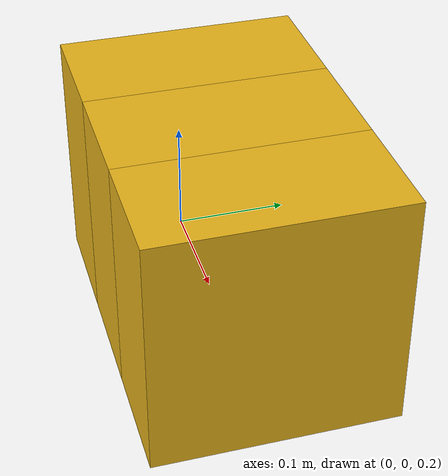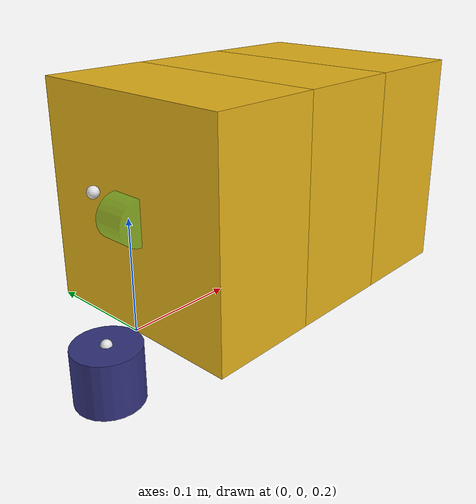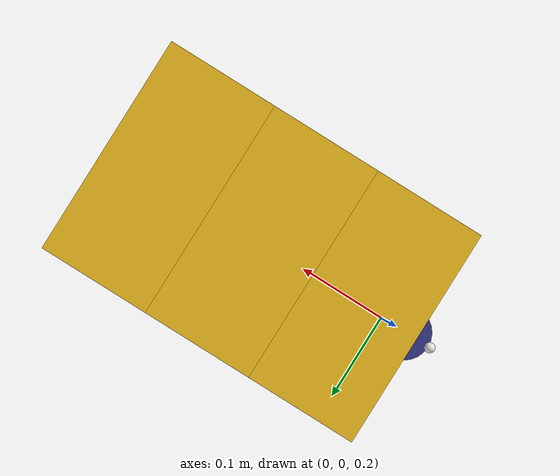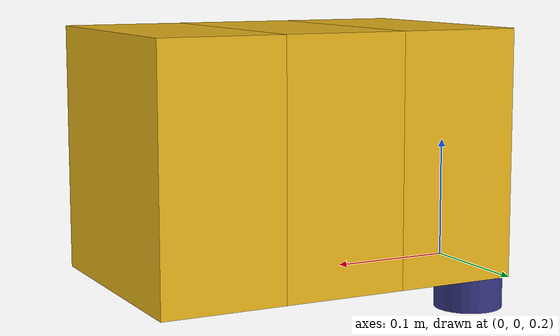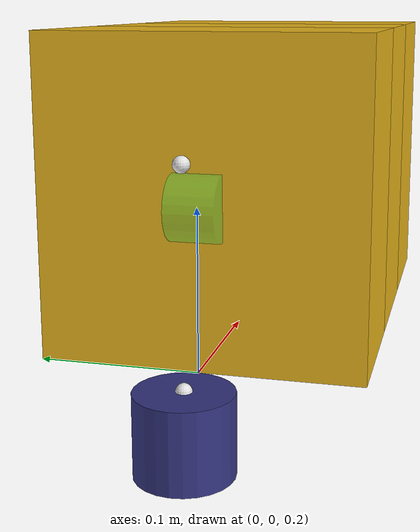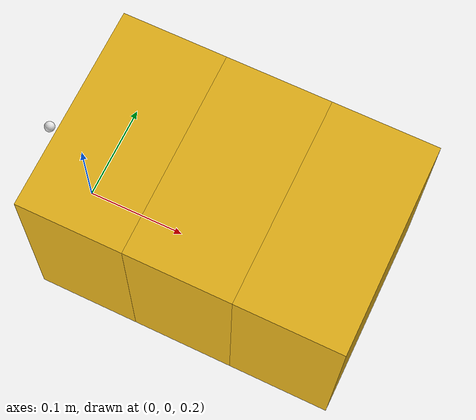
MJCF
<mujoco model="robotic_arm">
    <option gravity="0 0 -9.81" />
    <visual>
        <headlight ambient="0.5 0.5 0.5" />
    </visual>

    <asset>
        <material name="white" rgba="1 1 1 1" />
    </asset>

    <default>
        <joint axis="0 1 0" range="0 60" limited="true"/>
        <geom type="box" size=".1 .2 .3" rgba=".9 .7 .1 1"/>

        <site rgba=".9 .9 .9 1"/>
        <default class="visual_cylinder">
            <geom type="cylinder" fromto="0 .015 0 0 -.015 0" size=".02" rgba=".3 .9 .3 .4"/>
        </default>
    </default>

    <worldbody>
        <light pos="0 0 1"/>

        <body name="weight" pos="-.03 0 .175">
            <joint axis="0 0 1" pos="0 0 .025" type="slide"/>
            <geom type="cylinder" size=".03 .025" density="5000" rgba=".2 .2 .5 1"/>
            <site name="s1" pos="0 0 .025"/>
        </body>

        <site name="s2" pos="-.03 0 .33"/>
            <body pos="0 0 .3">
            <joint/>
            <geom name="g1" class="visual_cylinder"/>
            <geom fromto="0 0 0 .1 0 0"/>
            <site name="s3" pos=".02 0 .03"/>
            <body pos=".1 0 0">
                <joint/>
                <geom name="g2" class="visual_cylinder"/>
                <geom fromto="0 0 0 .1 0 0"/>
                <site name="s4" pos=".03 0 .01"/>
                <site name="s5" pos=".05 0 .02"/>
                <site name="side2" pos="0 0 .03"/>
                <body pos=".1 0 0">
                    <joint/>
                    <geom name="g3" class="visual_cylinder"/>
                    <geom fromto="0 0 0 .1 0 0"/>
                    <site name="s6" pos=".03 0 .01"/>
                    <site name="side3" pos="0 0 .03"/>
                </body>
            </body>
        </body>
    </worldbody>
</mujoco>
